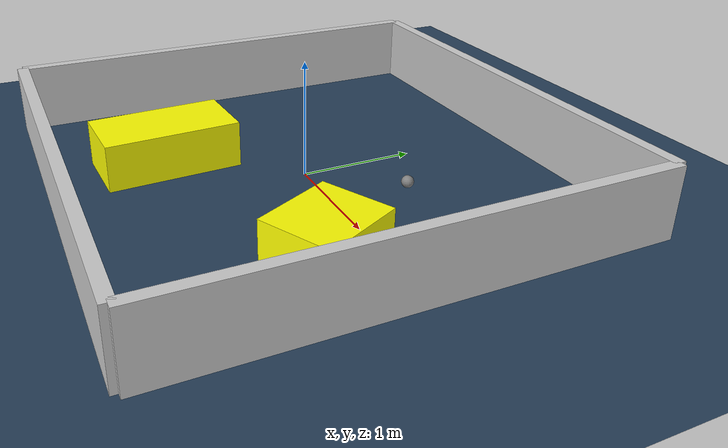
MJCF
<?xml version="1.0" ?>
<mujoco model="generated_environment">
  <option timestep="0.01" integrator="RK4" cone="elliptic"/>
  <default>
    <geom density="1"/>
  </default>
  <asset>
    <texture builtin="gradient" height="3072" rgb1="0.3 0.5 0.7" rgb2="0 0 0" type="skybox" width="512"/>
    <texture builtin="checker" height="300" mark="edge" markrgb="0.8 0.8 0.8" name="groundplane" rgb1="0.2 0.3 0.4" rgb2="0.1 0.2 0.3" type="2d" width="300"/>
    <material name="groundplane" reflectance="0.2" texrepeat="5 5" texture="groundplane" texuniform="true"/>
    <material name="robot" rgba="0.0 1.0 0.0 1"/>
  </asset>
  <worldbody>
    <light dir="0 0 -1" directional="true" pos="0 0 1.5"/>
    <geom condim="4" friction="1.0 0.005 0.001" material="groundplane" name="floor" size="0 0 0.05" type="plane"/>
    <body name="walls">
      <geom name="wall_1" condim="4" pos="-2.0 0.0 0.3" rgba="0.800000011920929 0.800000011920929 0.800000011920929 1.0" size="0.05 2.0 0.3" type="box"/>
      <geom name="wall_2" condim="4" pos="2.0 0.0 0.3" rgba="0.800000011920929 0.800000011920929 0.800000011920929 1.0" size="0.05 2.0 0.3" type="box"/>
      <geom name="wall_3" condim="4" pos="0.0 -2.0 0.3" rgba="0.800000011920929 0.800000011920929 0.800000011920929 1.0" size="2.0 0.05 0.3" type="box"/>
      <geom name="wall_4" condim="4" pos="0.0 2.0 0.3" rgba="0.800000011920929 0.800000011920929 0.800000011920929 1.0" size="2.0 0.05 0.3" type="box"/>
    </body>
    <body name="robot">
      <joint name="joint_x" type="slide" pos="0 0 0" axis="1 0 0"/>
      <joint name="joint_y" type="slide" pos="0 0 0" axis="0 1 0"/>
      <geom name="robot" type="sphere" pos="0.8042681393415441 0.5183784643971729 0.2" size="0.05" mass="5." friction="1.0 0.005 0.0001" condim="4"/>
      <site name="sensor_ball"/>
    </body>
    <body name="obstacle_1_movable">
      <geom name="obstacle_1_movable" condim="4" pos="-0.67135297789984 -1.021215961986011 0.2" euler="0 0 92.73586777936862" friction="1.0 0.005 0.001" rgba="1 1 0 1" size="0.5743666789294368 0.30382651117529574 0.2" type="box" mass="0.1"/>
      <joint type="free"/>
    </body>
    <body name="obstacle_2_movable">
      <geom name="obstacle_2_movable" condim="4" pos="1.316345548651666 -0.4245572018846482 0.2" euler="0 0 26.643016958679905" friction="1.0 0.005 0.001" rgba="1 1 0 1" size="0.31338560972869 0.3535643629883436 0.2" type="box" mass="0.1"/>
      <joint type="free"/>
    </body>
  </worldbody>
  <actuator>
    <motor name="actuator_x" joint="joint_x" gear="1" ctrlrange="-1 1"/>
    <motor name="actuator_y" joint="joint_y" gear="1" ctrlrange="-1 1"/>
  </actuator>
</mujoco>
